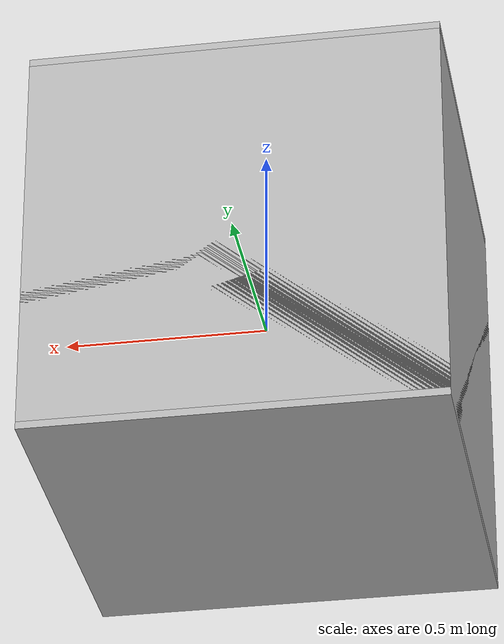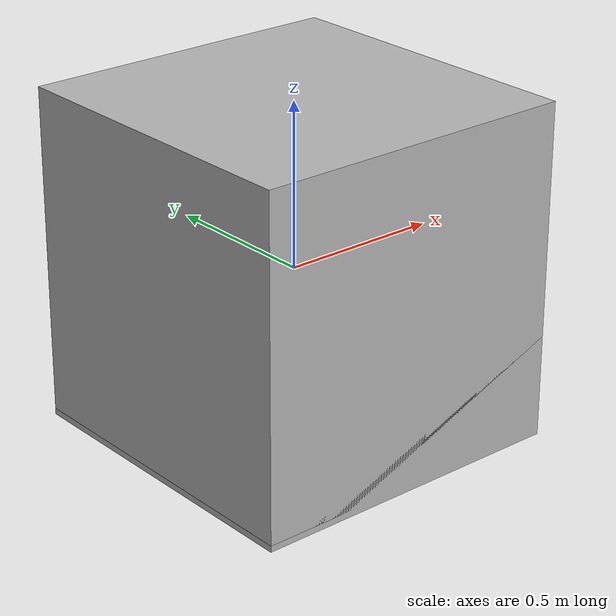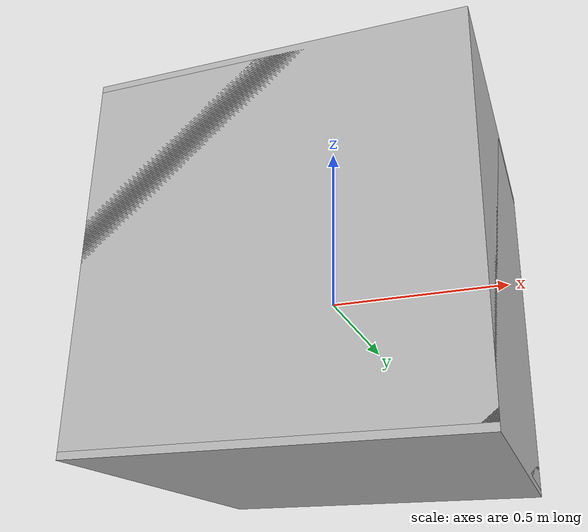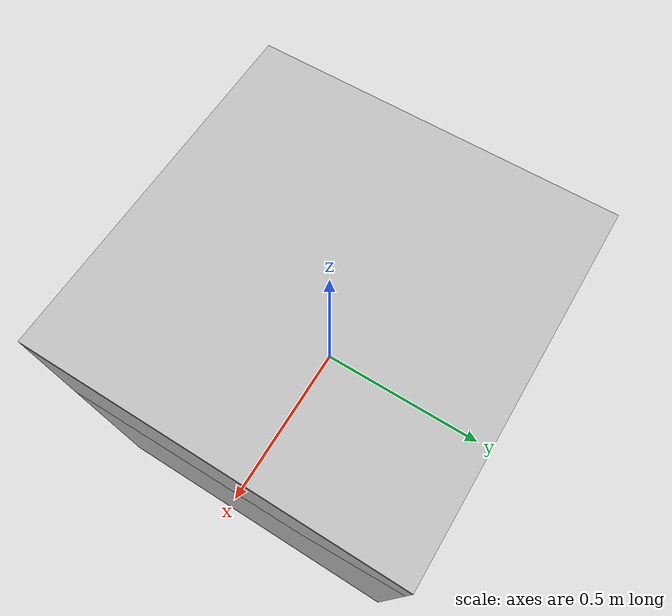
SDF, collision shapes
<?xml version="1.0" ?>
<sdf version="1.5">
  <model name="paparop">
  <pose>0.0 0.0 0.0 0.0 0.0 0.0</pose>
<!--LINKS-->
    <link name="base_footprint"/>

    <link name="base_link">

      <inertial>
        <pose>-0.064 0 0.048 0 0 0</pose>
        <inertia>
          <ixx>4.2111447e-02</ixx>
          <ixy>0</ixy>
          <ixz>0</ixz>
          <iyy>4.2111447e-02</iyy>
          <iyz>0</iyz>
          <izz>7.5254874e-02</izz>
        </inertia>
        <mass>1.3729096e+00</mass>
      </inertial>

      <collision name="base_collision">
        <pose>-0.064 0 0.048 0 0 0</pose>
        <geometry>
          <box>
            <size>0.266 0.266 0.094</size>
          </box>
        </geometry>
      </collision>

      <visual name="base_visual">
        <pose>-0.064 0 0 0 0 0</pose>
        <geometry>
          <mesh>
            <uri>model://simulations/meshes/waffle_pi_base_for_open_manipulator.stl</uri>
            <scale>0.001 0.001 0.001</scale>
          </mesh>
        </geometry>
      </visual>
    </link>

    <link name="imu_link">
      <sensor name="tb3_imu" type="imu">
        <always_on>true</always_on>
        <update_rate>200</update_rate>
        <imu>
          <angular_velocity>
            <x>
              <noise type="gaussian">
                <mean>0.0</mean>
                <stddev>2e-4</stddev>
              </noise>
            </x>
            <y>
              <noise type="gaussian">
                <mean>0.0</mean>
                <stddev>2e-4</stddev>
              </noise>
            </y>
            <z>
              <noise type="gaussian">
                <mean>0.0</mean>
                <stddev>2e-4</stddev>
              </noise>
            </z>
          </angular_velocity>
          <linear_acceleration>
            <x>
              <noise type="gaussian">
                <mean>0.0</mean>
                <stddev>1.7e-2</stddev>
              </noise>
            </x>
            <y>
              <noise type="gaussian">
                <mean>0.0</mean>
                <stddev>1.7e-2</stddev>
              </noise>
            </y>
            <z>
              <noise type="gaussian">
                <mean>0.0</mean>
                <stddev>1.7e-2</stddev>
              </noise>
            </z>
          </linear_acceleration>
        </imu>
        <plugin name="turtlebot3_imu" filename="libgazebo_ros_imu_sensor.so">
          <ros>
            <remapping>~/out:=imu</remapping>
          </ros>
        </plugin>
      </sensor>
    </link>

    <link name="base_scan">
      <inertial>
        <pose>-0.07 0 0.111 0 0 0</pose>
        <inertia>
          <ixx>0.001</ixx>
          <ixy>0.000</ixy>
          <ixz>0.000</ixz>
          <iyy>0.001</iyy>
          <iyz>0.000</iyz>
          <izz>0.001</izz>
        </inertia>
        <mass>0.114</mass>
      </inertial>

      <collision name="lidar_sensor_collision">
        <pose>-0.07 0 0.111 0 0 0</pose>
        <geometry>
          <cylinder>
            <radius>0.0508</radius>
            <length>0.055</length>
          </cylinder>
        </geometry>
      </collision>

      <visual name="lidar_sensor_visual">
        <pose>-0.7 0 0.121 0 0 0</pose>
        <geometry>
          <mesh>
            <uri>model://simulations/meshes/lds.stl</uri>
            <scale>0.001 0.001 0.001</scale>
          </mesh>
        </geometry>
      </visual>

      <sensor name="hls_lfcd_lds" type="ray">
        <always_on>true</always_on>
        <visualize>true</visualize>
        <pose>-0.064 0 0.121 0 0 0</pose>
        <update_rate>5</update_rate>
        <ray>
          <scan>
            <horizontal>
              <samples>360</samples>
              <resolution>1.000000</resolution>
              <min_angle>0.000000</min_angle>
              <max_angle>6.280000</max_angle>
            </horizontal>
          </scan>
          <range>
            <min>0.120000</min>
            <max>3.5</max>
            <resolution>0.015000</resolution>
          </range>
          <noise>
            <type>gaussian</type>
            <mean>0.0</mean>
            <stddev>0.01</stddev>
          </noise>
        </ray>
        <plugin name="turtlebot3_laserscan" filename="libgazebo_ros_ray_sensor.so">
          <ros>
            <remapping>~/out:=scan</remapping>
          </ros>
          <output_type>sensor_msgs/LaserScan</output_type>
          <frame_name>base_scan</frame_name>
        </plugin>
      </sensor>
    </link>

    <link name="wheel_left_link">

      <inertial>
        <pose>0.0 0.144 0.023 -1.57 0 0</pose>
        <inertia>
          <ixx>1.8158194e-03</ixx>
          <ixy>-9.3392e-12</ixy>
          <ixz>1.04909e-11</ixz>
          <iyy>3.2922126e-03</iyy>
          <iyz>5.75694e-11</iyz>
          <izz>1.8158194e-03</izz>
        </inertia>
        <mass>2.8498940e-02</mass>
      </inertial>

      <collision name="wheel_left_collision">
        <pose>0.0 0.144 0.023 -1.57 0 0</pose>
        <geometry>
          <cylinder>
            <radius>0.033</radius>
            <length>0.018</length>
          </cylinder>
        </geometry>
        <surface>
          <!-- This friction pamareter don't contain reliable data!! -->
          <friction>
            <ode>
              <mu>100000</mu>
              <mu2>100000</mu2>
              <fdir1>0 0 0</fdir1>
              <slip1>0.0</slip1>
              <slip2>0.0</slip2>
            </ode>
          </friction>
          <contact>
            <ode>
              <soft_cfm>0</soft_cfm>
              <soft_erp>0.2</soft_erp>
              <kp>1e+5</kp>
              <kd>1</kd>
              <max_vel>0.01</max_vel>
              <min_depth>0.001</min_depth>
            </ode>
          </contact>
        </surface>
      </collision>

      <visual name="wheel_left_visual">
        <pose>0.0 0.144 0.023 0 0 0</pose>
        <geometry>
          <mesh>
            <uri>model://simulations/meshes/left_tire.stl</uri>
            <scale>0.001 0.001 0.001</scale>
          </mesh>
        </geometry>
      </visual>
    </link>

    <link name="wheel_right_link">

      <inertial>
        <pose>0.0 -0.144 0.023 -1.57 0 0</pose>
        <inertia>
          <ixx>1.8158194e-03</ixx>
          <ixy>-9.3392e-12</ixy>
          <ixz>1.04909e-11</ixz>
          <iyy>3.2922126e-03</iyy>
          <iyz>5.75694e-11</iyz>
          <izz>1.8158194e-03</izz>
        </inertia>
        <mass>2.8498940e-02</mass>
      </inertial>

      <collision name="wheel_right_collision">
        <pose>0.0 -0.144 0.023 -1.57 0 0</pose>
        <geometry>
          <cylinder>
            <radius>0.033</radius>
            <length>0.018</length>
          </cylinder>
        </geometry>
        <surface>
          <!-- This friction pamareter don't contain reliable data!! -->
          <friction>
            <ode>
              <mu>100000</mu>
              <mu2>100000</mu2>
              <fdir1>0 0 0</fdir1>
              <slip1>0.0</slip1>
              <slip2>0.0</slip2>
            </ode>
          </friction>
          <contact>
            <ode>
              <soft_cfm>0</soft_cfm>
              <soft_erp>0.2</soft_erp>
              <kp>1e+5</kp>
              <kd>1</kd>
              <max_vel>0.01</max_vel>
              <min_depth>0.001</min_depth>
            </ode>
          </contact>
        </surface>
      </collision>

      <visual name="wheel_right_visual">
        <pose>0.0 -0.144 0.023 0 0 0</pose>
        <geometry>
          <mesh>
            <uri>model://simulations/meshes/right_tire.stl</uri>
            <scale>0.001 0.001 0.001</scale>
          </mesh>
        </geometry>
      </visual>
    </link>

    <link name='caster_back_right_link'>
      <pose>-0.177 -0.064 -0.004 -1.57 0 0</pose>
      <inertial>
        <mass>0.001</mass>
        <inertia>
          <ixx>0.00001</ixx>
          <ixy>0.000</ixy>
          <ixz>0.000</ixz>
          <iyy>0.00001</iyy>
          <iyz>0.000</iyz>
          <izz>0.00001</izz>
        </inertia>
      </inertial>
      <collision name='collision'>
        <geometry>
          <sphere>
            <radius>0.005000</radius>
          </sphere>
        </geometry>
        <surface>
          <contact>
            <ode>
              <soft_cfm>0</soft_cfm>
              <soft_erp>0.2</soft_erp>
              <kp>1e+5</kp>
              <kd>1</kd>
              <max_vel>0.01</max_vel>
              <min_depth>0.001</min_depth>
            </ode>
          </contact>
        </surface>
      </collision>
    </link>

    <link name='caster_back_left_link'>
      <pose>-0.177 0.064 -0.004 -1.57 0 0</pose>
      <inertial>
        <mass>0.001</mass>
        <inertia>
          <ixx>0.00001</ixx>
          <ixy>0.000</ixy>
          <ixz>0.000</ixz>
          <iyy>0.00001</iyy>
          <iyz>0.000</iyz>
          <izz>0.00001</izz>
        </inertia>
      </inertial>
      <collision name='collision'>
        <geometry>
          <sphere>
            <radius>0.005000</radius>
          </sphere>
        </geometry>
        <surface>
          <contact>
            <ode>
              <soft_cfm>0</soft_cfm>
              <soft_erp>0.2</soft_erp>
              <kp>1e+5</kp>
              <kd>1</kd>
              <max_vel>0.01</max_vel>
              <min_depth>0.001</min_depth>
            </ode>
          </contact>
        </surface>
      </collision>
    </link>

    <link name="camera_link"/>

    <link name="camera_rgb_optical_frame">
      <inertial>
        <pose>0.076 0.0 0.093 0 0 0</pose>
        <inertia>
          <ixx>0.001</ixx>
          <ixy>0.000</ixy>
          <ixz>0.000</ixz>
          <iyy>0.001</iyy>
          <iyz>0.000</iyz>
          <izz>0.001</izz>
        </inertia>
        <mass>0.035</mass>
      </inertial>

      <pose>0.076 0.0 0.093 0 0 0</pose>
      <sensor name="camera" type="camera">
        <always_on>true</always_on>
        <visualize>true</visualize>
        <update_rate>30</update_rate>
        <camera name="picam">
          <horizontal_fov>1.085595</horizontal_fov>
          <image>
              <width>640</width>
              <height>480</height>
              <format>R8G8B8</format>
          </image>
          <clip>
              <near>0.03</near>
              <far>100</far>
          </clip>
          <noise>
            <type>gaussian</type>
            <mean>0.0</mean>
            <stddev>0.007</stddev>
          </noise>
        </camera>
          <plugin name="camera_driver" filename="libgazebo_ros_camera.so">
            <ros>
            </ros>
          </plugin>
      </sensor>
    </link>

    <link name="link1">
      <inertial>
        <pose>3.0876154e-04 0 -1.2176461e-04 0 0 0</pose>
        <inertia>
          <ixx>1.2505234e-05</ixx>
          <ixy>0</ixy>
          <ixz>-1.7855208e-07</ixz>
          <iyy>2.1898364e-05</iyy>
          <iyz>0</iyz>
          <izz>1.9267361e-05</izz>
        </inertia>
        <mass>7.9119962e-02</mass>
      </inertial>

      <collision name="link1_collision">
        <pose>-0 0 0 0 0 0</pose>
        <geometry>
          <box>
            <uri>model://simulations/meshes/chain_link1.stl</uri>
            <scale>0.001 0.001 0.001</scale>
          </box>
        </geometry>
      </collision>

      <visual name="link1_visual">
        <pose>-0 0 0 0 0 0</pose>
        <geometry>
          <mesh>
            <uri>model://simulations/meshes/chain_link1.stl</uri>
            <scale>0.001 0.001 0.001</scale>
          </mesh>
        </geometry>
      </visual>
    </link>

    <link name="link2">
      <inertial>
        <pose>3.0876154e-04 5.4043684e-04 0.047433464 0 0 0</pose>
        <inertia>
          <ixx>3.4543422e-05</ixx>
          <ixy>-1.6031095e-08</ixy>
          <ixz>-3.8375155e-07</ixz>
          <iyy>3.2689329e-05</iyy>
          <iyz>2.8511935e-08</iyz>
          <izz>1.8850320e-05</izz>
        </inertia>
        <mass>9.8406837e-02</mass>
      </inertial>

      <collision name="link2_collision">
        <pose>0 0 0.019 0 0 0</pose>
        <geometry>
          <box>
            <uri>model://simulations/meshes/chain_link2.stl</uri>
            <scale>0.001 0.001 0.001</scale>
          </box>
        </geometry>
      </collision>

      <visual name="link2_visual">
        <pose>0 0 0.019 0 0 0</pose>
        <geometry>
          <mesh>
            <uri>model://simulations/meshes/chain_link2.stl</uri>
            <scale>0.001 0.001 0.001</scale>
          </mesh>
        </geometry>
      </visual>
    </link>

    <link name="link3">
      <inertial>
        <pose>1.0308393e-02 3.7743363e-04 1.0170197e-01 0 0 0</pose>
        <inertia>
          <ixx>3.3055381e-04</ixx>
          <ixy>-9.7940978e-08</ixy>
          <ixz>-3.8505711e-05</ixz>
          <iyy>3.4290447e-04</iyy>
          <iyz>-1.5717516e-06</iyz>
          <izz>6.0346498e-05</izz>
        </inertia>
        <mass>1.3850917e-01</mass>
      </inertial>

      <collision name="link3_collision">
        <pose>-0 0 0 0 0 0</pose>
        <geometry>
          <box>
            <uri>model://simulations/meshes/chain_link3.stl</uri>
            <scale>0.001 0.001 0.001</scale>
          </box>
        </geometry>
      </collision>

      <visual name="link3_visual">
        <pose>0 0 0 0 0 0</pose>
        <geometry>
          <mesh>
            <uri>model://simulations/meshes/chain_link3.stl</uri>
            <scale>0.001 0.001 0.001</scale>
          </mesh>
        </geometry>
      </visual>
    </link>

    <link name="link4">
      <inertial>
        <pose>9.0909590e-02 3.8929816e-04 2.2413279e-04 0 0 0</pose>
        <inertia>
          <ixx>3.0654178e-05</ixx>
          <ixy>-1.2764155e-06</ixy>
          <ixz>-2.6874417e-07</ixz>
          <iyy>2.4230292e-04</iyy>
          <iyz>1.1559550e-08</iyz>
          <izz>2.5155057e-04</izz>
        </inertia>
        <mass>1.3274562e-01</mass>
      </inertial>

      <collision name="link4_collision">
        <pose>-0 0 0 0 0 0</pose>
        <geometry>
          <box>
            <uri>model://simulations/meshes/chain_link4.stl</uri>
            <scale>0.001 0.001 0.001</scale>
          </box>
        </geometry>
      </collision>

      <visual name="link4_visual">
        <pose>0 0 0 0 0 0</pose>
        <geometry>
          <mesh>
            <uri>model://simulations/meshes/chain_link4.stl</uri>
            <scale>0.001 0.001 0.001</scale>
          </mesh>
        </geometry>
      </visual>
    </link>

   <link name="link5">
      <inertial>
        <pose>4.4206755e-02 3.6839985e-07 8.9142216e-03 0 0 0</pose>
        <inertia>
          <ixx>8.0870749e-05</ixx>
          <ixy>0</ixy>
          <ixz>-1.0157896e-06</ixz>
          <iyy>7.5980465e-05</iyy>
          <iyz>0</iyz>
          <izz>9.3127351e-05</izz>
        </inertia>
        <mass>1.4327573e-01</mass>
      </inertial>

      <collision name="link5_collision">
        <pose>-0 0 0 0 0 0</pose>
        <geometry>
          <box>
            <uri>model://simulations/meshes/chain_link5.stl</uri>
            <scale>0.001 0.001 0.001</scale>
          </box>
        </geometry>
      </collision>

      <visual name="link5_visual">
        <pose>0 0 0 0 0 0</pose>
        <geometry>
          <mesh>
            <uri>model://simulations/meshes/chain_link5.stl</uri>
            <scale>0.001 0.001 0.001</scale>
          </mesh>
        </geometry>
      </visual>
    </link>

    <link name="gripper_link">
      <inertial>
        <pose>0 0 0 0 0 0</pose>
        <inertia>
          <ixx>1.0e-03</ixx>
          <ixy>0</ixy>
          <ixz>0</ixz>
          <iyy>1.0e-03</iyy>
          <iyz>0</iyz>
          <izz>1.0e-03</izz>
        </inertia>
        <mass>1.0e-03</mass>
      </inertial>

      <collision name="gripper_link_collision">
        <pose>-0 0 0 0 0 0</pose>
        <geometry>
          <box>
            <uri>model://simulations/meshes/chain_link_grip_l.stl</uri>
            <scale>0.001 0.001 0.001</scale>
          </box>
        </geometry>
      </collision>

      <visual name="gripper_link_visual">
        <pose>0 0 0 0 0 0</pose>
        <geometry>
          <mesh>
            <uri>model://simulations/meshes/chain_link_grip_l.stl</uri>
            <scale>0.001 0.001 0.001</scale>
          </mesh>
        </geometry>
      </visual>
    </link>

    <link name="gripper_link_sub">
      <inertial>
        <pose>0 0 0 0 0 0</pose>
        <inertia>
          <ixx>1.0e-03</ixx>
          <ixy>0</ixy>
          <ixz>0</ixz>
          <iyy>1.0e-03</iyy>
          <iyz>0</iyz>
          <izz>1.0e-03</izz>
        </inertia>
        <mass>1.0e-03</mass>
      </inertial>

      <collision name="gripper_link_sub_collision">
        <pose>-0 0 0 0 0 0</pose>
        <geometry>
          <box>
            <uri>model://simulations/meshes/chain_link_grip_r.stl</uri>
            <scale>0.001 0.001 0.001</scale>
          </box>
        </geometry>
      </collision>

      <visual name="gripper_link_sub_visual">
        <pose>0 0 0 0 0 0</pose>
        <geometry>
          <mesh>
            <uri>model://simulations/meshes/chain_link_grip_r.stl</uri>
            <scale>0.001 0.001 0.001</scale>
          </mesh>
        </geometry>
      </visual>
    </link>

    <link name="end_effector_link">
      <inertial>
        <pose>0 0 0 0 0 0</pose>
        <inertia>
          <ixx>1.0e-03</ixx>
          <ixy>0</ixy>
          <ixz>0</ixz>
          <iyy>1.0e-03</iyy>
          <iyz>0</iyz>
          <izz>1.0e-03</izz>
        </inertia>
        <mass>1.0e-03</mass>
      </inertial>

      <collision name="end_effector_link_collision">
        <pose>-0 0 0 0 0 0</pose>
        <geometry>
          <box>
            <size>0.01 0.01 0.01</size>
          </box>
        </geometry>
      </collision>

      <visual name="end_effector_link_visual">
        <pose>0 0 0 0 0 0</pose>
        <geometry>
          <box>
            <size>0.01 0.01 0.01</size>
          </box>
        </geometry>
      </visual>
    </link>

<!--JOINTS-->

    <joint name="base_joint" type="fixed">
      <parent>base_footprint</parent>
      <child>base_link</child>
      <pose>0.0 0.0 0.010 0 0 0</pose>
    </joint>

    <joint name="wheel_left_joint" type="revolute">
      <parent>base_link</parent>
      <child>wheel_left_link</child>
      <pose>0.0 0.144 0.023 -1.57 0 0</pose>
      <axis>
        <xyz>0 0 1</xyz>
      </axis>
    </joint>

    <joint name="wheel_right_joint" type="revolute">
      <parent>base_link</parent>
      <child>wheel_right_link</child>
      <pose>0.0 -0.144 0.023 -1.57 0 0</pose>
      <axis>
        <xyz>0 0 1</xyz>
      </axis>
    </joint>

    <joint name='caster_back_right_joint' type='ball'>
      <parent>base_link</parent>
      <child>caster_back_right_link</child>
    </joint>

    <joint name='caster_back_left_joint' type='ball'>
      <parent>base_link</parent>
      <child>caster_back_left_link</child>
    </joint>

    <joint name="imu_joint" type="fixed">
      <parent>base_link</parent>
      <child>imu_link</child>
      <pose>-0.032 0 0.068 0 0 0</pose>
      <axis>
        <xyz>0 0 1</xyz>
      </axis>
    </joint>

    <joint name="lidar_joint" type="fixed">
      <parent>base_link</parent>
      <child>base_scan</child>
      <pose>-0.07 0 0.121 0 0 0</pose>
      <axis>
        <xyz>0 0 1</xyz>
      </axis>
    </joint>

    <joint name="camera_joint" type="fixed">
      <parent>base_link</parent>
      <child>camera_link</child>
      <pose>0.073 -0.011 0.084 0 0 0</pose>
      <axis>
        <xyz>0 0 1</xyz>
      </axis>
    </joint>

    <joint name="camera_rgb_joint" type="fixed">
      <parent>camera_link</parent>
      <child>camera_rgb_optical_frame</child>
      <pose>0.003 0.011 0.009 0 0 0</pose>
      <axis>
        <xyz>0 0 1</xyz>
      </axis>
    </joint>

    <joint name="base_arm_joint" type="fixed">
      <parent>base_link</parent>
      <child>link1</child>
      <pose>-0.08 0 0.121 0 0 0</pose>
    </joint>

    <joint name="joint1" type="revolute">
      <parent>link1</parent>
      <child>link2</child>
      <pose>0.012 0.0 0.017 0 0 0</pose>
      <axis>
        <xyz>0 0 1</xyz>
      </axis>
      <limit>
        <velocity> 4.8 </velocity>
        <effort> 1 </effort>
        <lower> -2.82743338823 </lower>
        <upper> 2.82743338823 </upper>
      </limit>
    </joint>

    <joint name="joint2" type="revolute">
      <parent>link2</parent>
      <child>link3</child>
      <pose>0.0 0.0 0.0595 0 0 0</pose>
      <axis>
        <xyz>0 1 0</xyz>
      </axis>
      <limit>
        <velocity> 4.8 </velocity>
        <effort> 1 </effort>
        <lower> -1.79070781255 </lower>
        <upper> 1.57079632679 </upper>
       </limit>
    </joint>

    <joint name="joint3" type="revolute">
      <parent>link3</parent>
      <child>link4</child>
      <pose> 0.024 0 0.128 0 0 0</pose>
      <axis>
        <xyz>0 1 0</xyz>
      </axis>
      <limit>
        <velocity> 4.8 </velocity>
        <effort> 1 </effort>
        <lower> -0.94247779607 </lower>
        <upper> 1.38230076758 </upper>
       </limit>
    </joint>

    <joint name="joint4" type="revolute">
      <parent>link4</parent>
      <child>link5</child>
      <pose> 0.124 0.0 0.0 0 0 0</pose>
      <axis>
        <xyz>0 1 0</xyz>
      </axis>
      <limit>
        <velocity> 4.8 </velocity>
        <effort> 1 </effort>
        <lower> -1.79070781255  </lower>
        <upper> 2.04203522483 </upper>
       </limit>
    </joint>

    <joint name="gripper" type="prismatic">
      <parent>link5</parent>
      <child>gripper_link</child>
      <pose> 0.0817 0.021 0.0 0 0 0</pose>
      <axis>
        <xyz>0 1 0</xyz>
      </axis>
      <limit>
        <velocity> 4.8 </velocity>
        <effort> 1 </effort>
        <lower> -0.010  </lower>
        <upper> 0.019 </upper>
       </limit>
    </joint>

    <joint name="gripper_sub" type="prismatic">
      <parent>link5</parent>
      <child>gripper_link_sub</child>
      <pose> 0.0817 -0.021 0.0 0 0 0</pose>
      <axis>
        <xyz>0 1 0</xyz>
      </axis>
      <limit>
        <velocity> 4.8 </velocity>
        <effort> 1 </effort>
        <lower> -0.010  </lower>
        <upper> 0.019 </upper>
       </limit>
    </joint>

     <joint name="end_effector_joint" type="fixed">
      <parent>link5</parent>
      <child>end_effector_link</child>
      <pose>0.126 0.0 0.0 0 0 0</pose>
    </joint>

<!--PLUGINS-->
    <plugin name="turtlebot3_diff_drive" filename="libgazebo_ros_diff_drive.so">

      <ros>
      </ros>

      <update_rate>30</update_rate>

      <!-- wheels -->
      <left_joint>wheel_left_joint</left_joint>
      <right_joint>wheel_right_joint</right_joint>

      <!-- kinematics -->
      <wheel_separation>0.287</wheel_separation>
      <wheel_diameter>0.066</wheel_diameter>

      <!-- limits -->
      <max_wheel_torque>20</max_wheel_torque>
      <max_wheel_acceleration>1.0</max_wheel_acceleration>

      <command_topic>cmd_vel</command_topic>

      <!-- output -->
      <publish_odom>true</publish_odom>
      <publish_odom_tf>true</publish_odom_tf>
      <publish_wheel_tf>false</publish_wheel_tf>

      <odometry_topic>odom</odometry_topic>
      <odometry_frame>odom</odometry_frame>
      <robot_base_frame>base_footprint</robot_base_frame>

    </plugin>

    <plugin name="turtlebot3_joint_state" filename="libgazebo_ros_joint_state_publisher.so">
      <ros>
        <remapping>~/out:=joint_states</remapping>
      </ros>
      <update_rate>30</update_rate>
      <joint_name>wheel_left_joint</joint_name>
      <joint_name>wheel_right_joint</joint_name>
    </plugin>

  </model>
</sdf>
